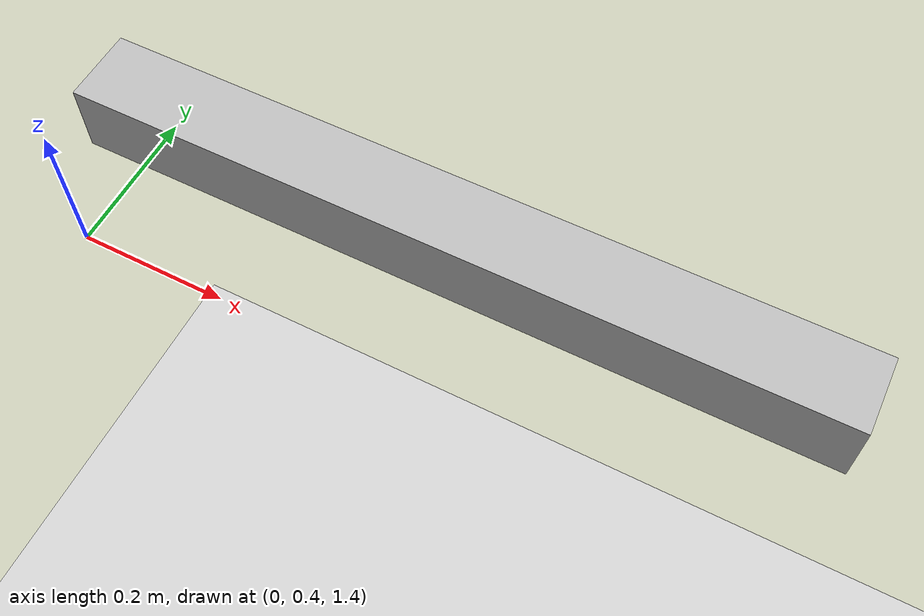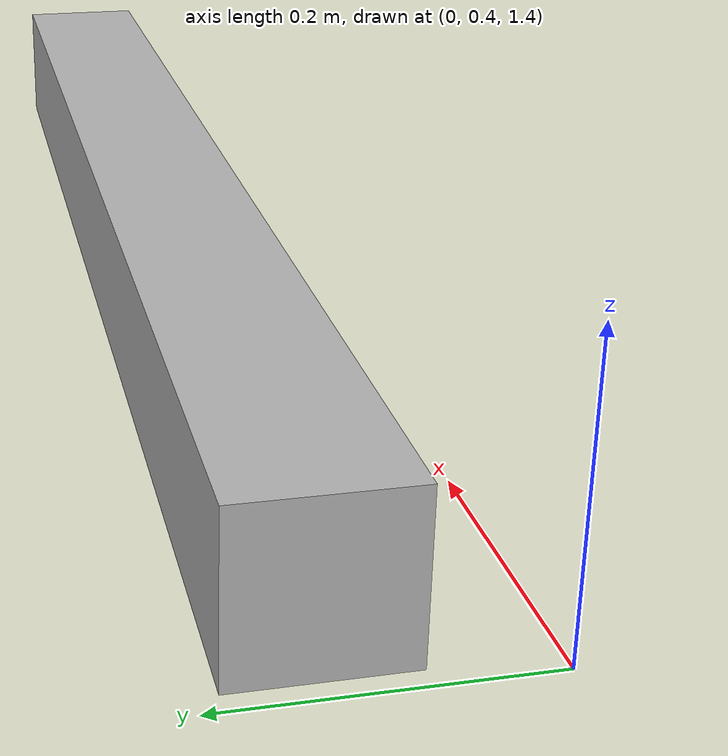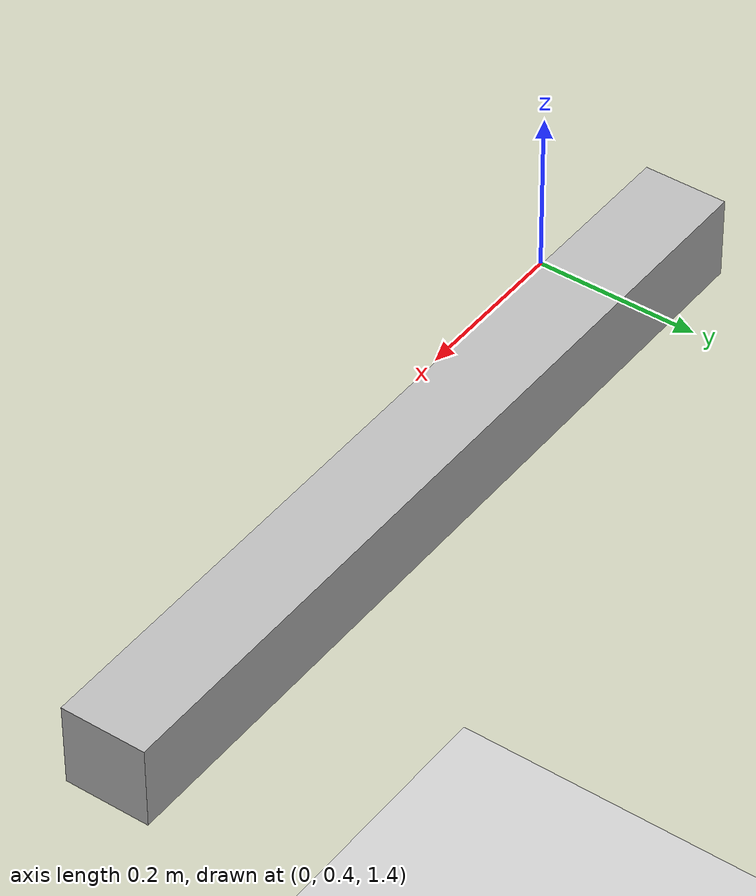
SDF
<?xml version="1.0" ?>
<sdf version="1.7">

    <world name="sar_world1">
        <physics name="1ms" type="ignored">
            <max_step_size>0.001</max_step_size>
            <real_time_factor>1.0</real_time_factor>
        </physics>
        <plugin
            filename="ignition-gazebo-physics-system"
            name="ignition::gazebo::systems::Physics">
        </plugin>
        <plugin
            filename="ignition-gazebo-user-commands-system"
            name="ignition::gazebo::systems::UserCommands">
        </plugin>
        <plugin
            filename="ignition-gazebo-scene-broadcaster-system"
            name="ignition::gazebo::systems::SceneBroadcaster">
        </plugin>

        <!-- Other world elements -->
        <gui fullscreen="0">

            <!-- 3D scene -->
            <plugin filename="GzScene3D" name="3D View">
                <ignition-gui>
                <title>3D View</title>
                <property type="bool" key="showTitleBar">false</property>
                <property type="string" key="state">docked</property>
                </ignition-gui>

                <engine>ogre2</engine>
                <scene>scene</scene>
                <ambient_light>0.4 0.4 0.4</ambient_light>
                <background_color>0.8 0.8 0.8</background_color>
            </plugin>

            <!-- KeyPublisher plugin-->
            <plugin filename="KeyPublisher" name="Key Publisher"/>

            <!-- World control -->
            <plugin filename="WorldControl" name="World control">
                <ignition-gui>
                <title>World control</title>
                <property type="bool" key="showTitleBar">false</property>
                <property type="bool" key="resizable">false</property>
                <property type="double" key="height">72</property>
                <property type="double" key="width">121</property>
                <property type="double" key="z">1</property>

                <property type="string" key="state">floating</property>
                <anchors target="3D View">
                    <line own="left" target="left"/>
                    <line own="bottom" target="bottom"/>
                </anchors>
                </ignition-gui>

                <play_pause>true</play_pause>
                <step>true</step>
                <start_paused>true</start_paused>
                <service>/world/car_world/control</service>
                <stats_topic>/world/car_world/stats</stats_topic>
            </plugin>

            <!-- World statistics -->
            <plugin filename="WorldStats" name="World stats">
                <ignition-gui>
                <title>World stats</title>
                <property type="bool" key="showTitleBar">false</property>
                <property type="bool" key="resizable">false</property>
                <property type="double" key="height">110</property>
                <property type="double" key="width">290</property>
                <property type="double" key="z">1</property>

                <property type="string" key="state">floating</property>
                <anchors target="3D View">
                    <line own="right" target="right"/>
                    <line own="bottom" target="bottom"/>
                </anchors>
                </ignition-gui>

                <sim_time>true</sim_time>
                <real_time>true</real_time>
                <real_time_factor>true</real_time_factor>
                <iterations>true</iterations>
                <topic>/world/car_world/stats</topic>

            </plugin>

            <!-- Entity tree -->
            <plugin filename="EntityTree" name="Entity tree">
            </plugin>

        </gui>

        <light type="directional" name="sun">
            <cast_shadows>true</cast_shadows>
            <pose>0 0 10 0 0 0</pose>
            <diffuse>0.8 0.8 0.8 1</diffuse>
            <specular>0.2 0.2 0.2 1</specular>
            <attenuation>
                <range>1000</range>
                <constant>0.9</constant>
                <linear>0.01</linear>
                <quadratic>0.001</quadratic>
            </attenuation>
            <direction>-0.5 0.1 -0.9</direction>
        </light>

        <model name="ground_plane">
            <static>true</static>
            <link name="link">
                <collision name="collision">
                <geometry>
                    <plane>
                    <normal>0 0 1</normal>
                    </plane>
                </geometry>
                </collision>
                <visual name="visual">
                <geometry>
                    <plane>
                    <normal>0 0 1</normal>
                    <size>4 4</size>
                    </plane>
                </geometry>
                <material>
                    <ambient>0.8 0.8 0.8 1</ambient>
                    <diffuse>0.8 0.8 0.8 1</diffuse>
                    <specular>0.8 0.8 0.8 1</specular>
                </material>
                </visual>
            </link>
        </model>

        <model name="one_link_robot" canonical_link='link1'>
            <link name="link1">
                <pose>0.45 0.55 1.5 0 0 0</pose>
                <inertial>
                    <mass>1.0</mass>
                    <inertia>
                        <ixx>0.01</ixx> <ixy>0.0</ixy> <ixz>0.0</ixz>
                        <iyy>0.01</iyy> <iyz>0.0</iyz>
                        <izz>0.01</izz>
                    </inertia>
                </inertial>
                <collision name="collision">
                    <geometry>
                        <box>
                            <size>1 0.1 0.1</size>
                        </box>
                    </geometry>
                </collision>
                <visual name="visual">
                    <geometry>
                        <box>
                            <size>1 0.1 0.1</size>
                        </box>
                    </geometry>
                </visual>
            </link>

            <plugin filename="/home/dlee/ros2_ws/install/sar_gazebo/lib/libTest.so"
            name="ignition::gazebo::systems::Test">
                <Motor_Number>1</Motor_Number>
                <linkName>link1</linkName>
            </plugin>

        </model>
    </world>
</sdf>
